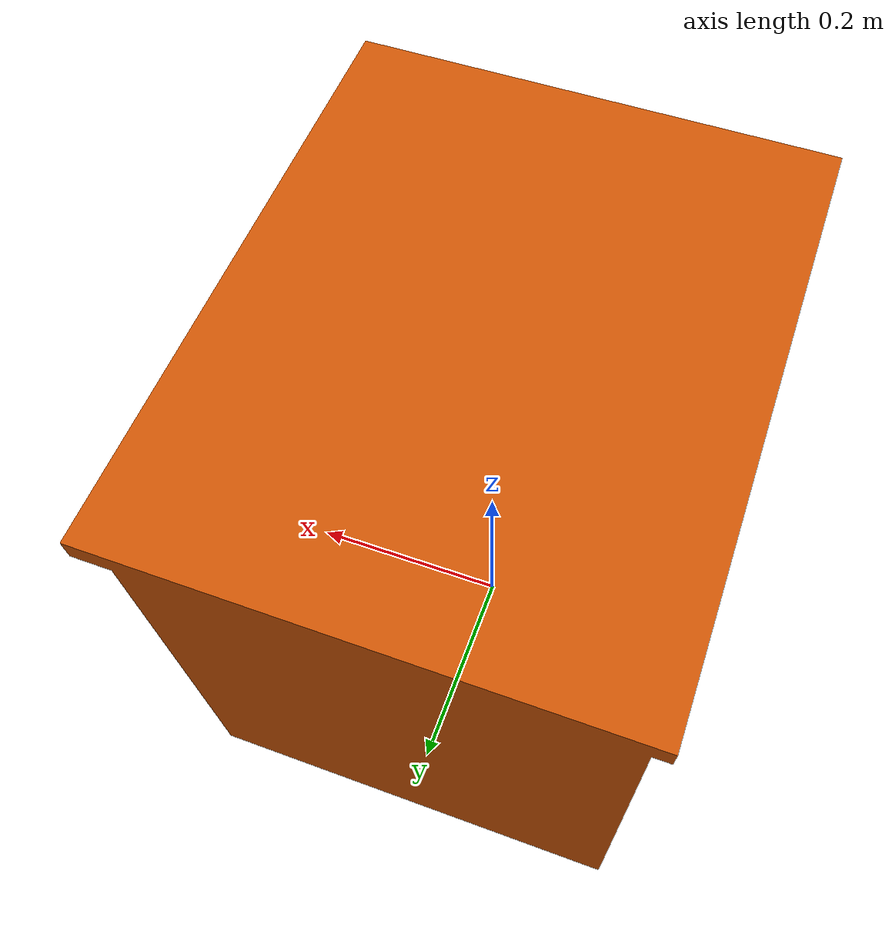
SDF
<sdf version='1.6'>
  <model name='Drawer_On_Top'>
    <link name='Drawer_On_Top'>
      <pose frame=''>0 0 0 0 -0 0</pose>
      <inertial>
        <pose frame=''>-0 -0.007675 0.23518 0 -0 0</pose>
        <mass>35</mass>
        <inertia>
          <ixx>3.9466</ixx>
          <ixy>1.5446e-16</ixy>
          <ixz>-1.3928e-16</ixz>
          <iyy>3.104</iyy>
          <iyz>0.01977</iyz>
          <izz>3.4589</izz>
        </inertia>
      </inertial>
      <collision name='Drawer_On_Top_collision'>
        <pose frame=''>0 0 0 1.5708 -0 0</pose>
        <geometry>
          <mesh>
            <scale>1 1 1</scale>
            <uri>model://Drawer_On_Top/meshes/Drawer_On_Top.dae</uri>
          </mesh>
        </geometry>
      </collision>
      <visual name='Drawer_On_Top_visual'>
        <pose frame=''>0 0 0 1.5708 -0 0</pose>
        <geometry>
          <mesh>
            <scale>1 1 1</scale>
            <uri>model://Drawer_On_Top/meshes/Drawer_On_Top.dae</uri>
          </mesh>
        </geometry>
      </visual>
    </link>
  </model>
</sdf>
